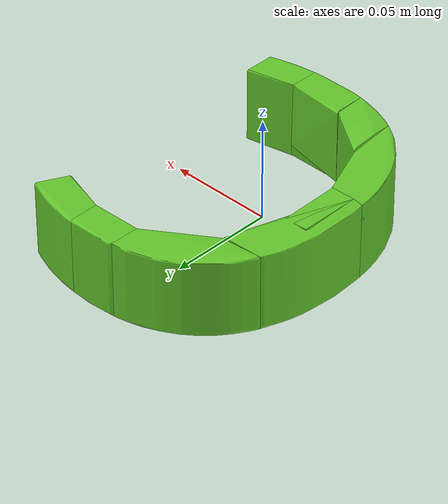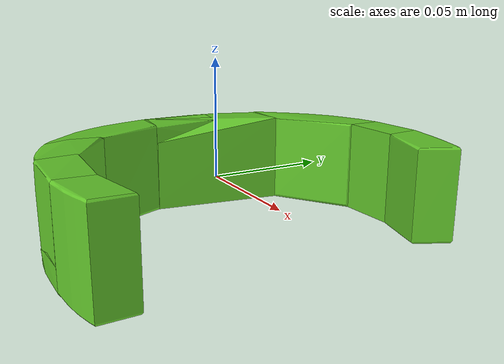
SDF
<?xml version='1.0' encoding='UTF-8'?>
<!-- This SDF was autogenerated by obj_to_drake_sdf.py -->
<sdf version="1.7">
  <model name="C_centered">
    <link name="C_centered">
      <inertial>
        <pose>0 0 0 0 0 0</pose>
        <mass>0.05</mass>
        <inertia>
          <ixx>0.00014868633</ixx>
          <iyy>5.6265767e-05</iyy>
          <izz>0.00019182793</izz>
          <ixy>-3.5721955e-06</ixy>
          <ixz>-3.6788468e-10</ixz>
          <iyz>-3.6171803e-10</iyz>
        </inertia>
      </inertial>
      <visual name="convex_0">
        <pose>0 0 0 0 0 0</pose>
        <geometry>
          <mesh>
            <uri>C_centered_convex_0.obj</uri>
          </mesh>
        </geometry>
        <material>
          <diffuse>0.39215686274509803 0.7843137254901961 0.17254901960784313 1</diffuse>
        </material>
      </visual>
      <collision name="convex_0_volume">
        <pose>0 0 0 0 0 0</pose>
        <geometry>
          <mesh>
            <uri>C_centered_convex_0.obj</uri>
          </mesh>
        </geometry>
        <drake:proximity_properties xmlns:drake="uri:drake">
          <drake:compliant_hydroelastic/>
          <drake:hydroelastic_modulus> 3.0e7 </drake:hydroelastic_modulus>
          <drake:mesh_resolution_hint> 0.02 </drake:mesh_resolution_hint>
          <drake:hunt_crossley_dissipation>10</drake:hunt_crossley_dissipation>
          <drake:mu_dynamic>0.3</drake:mu_dynamic>
        </drake:proximity_properties>
      </collision>
      <visual name="convex_1">
        <pose>0 0 0 0 0 0</pose>
        <geometry>
          <mesh>
            <uri>C_centered_convex_1.obj</uri>
          </mesh>
        </geometry>
        <material>
          <diffuse>0.39215686274509803 0.7843137254901961 0.17254901960784313 1</diffuse>
        </material>
      </visual>
      <collision name="convex_1_volume">
        <pose>0 0 0 0 0 0</pose>
        <geometry>
          <mesh>
            <uri>C_centered_convex_1.obj</uri>
          </mesh>
        </geometry>
        <drake:proximity_properties xmlns:drake="uri:drake">
          <drake:compliant_hydroelastic/>
          <drake:hydroelastic_modulus> 3.0e7 </drake:hydroelastic_modulus>
          <drake:mesh_resolution_hint> 0.02 </drake:mesh_resolution_hint>
          <drake:hunt_crossley_dissipation>10</drake:hunt_crossley_dissipation>
          <drake:mu_dynamic>0.3</drake:mu_dynamic>
        </drake:proximity_properties>
      </collision>
      <visual name="convex_2">
        <pose>0 0 0 0 0 0</pose>
        <geometry>
          <mesh>
            <uri>C_centered_convex_2.obj</uri>
          </mesh>
        </geometry>
        <material>
          <diffuse>0.39215686274509803 0.7843137254901961 0.17254901960784313 1</diffuse>
        </material>
      </visual>
      <collision name="convex_2_volume">
        <pose>0 0 0 0 0 0</pose>
        <geometry>
          <mesh>
            <uri>C_centered_convex_2.obj</uri>
          </mesh>
        </geometry>
        <drake:proximity_properties xmlns:drake="uri:drake">
          <drake:compliant_hydroelastic/>
          <drake:hydroelastic_modulus> 3.0e7 </drake:hydroelastic_modulus>
          <drake:mesh_resolution_hint> 0.02 </drake:mesh_resolution_hint>
          <drake:hunt_crossley_dissipation>10</drake:hunt_crossley_dissipation>
          <drake:mu_dynamic>0.3</drake:mu_dynamic>
        </drake:proximity_properties>
      </collision>
      <visual name="convex_3">
        <pose>0 0 0 0 0 0</pose>
        <geometry>
          <mesh>
            <uri>C_centered_convex_3.obj</uri>
          </mesh>
        </geometry>
        <material>
          <diffuse>0.39215686274509803 0.7843137254901961 0.17254901960784313 1</diffuse>
        </material>
      </visual>
      <collision name="convex_3_volume">
        <pose>0 0 0 0 0 0</pose>
        <geometry>
          <mesh>
            <uri>C_centered_convex_3.obj</uri>
          </mesh>
        </geometry>
        <drake:proximity_properties xmlns:drake="uri:drake">
          <drake:compliant_hydroelastic/>
          <drake:hydroelastic_modulus> 3.0e7 </drake:hydroelastic_modulus>
          <drake:mesh_resolution_hint> 0.02 </drake:mesh_resolution_hint>
          <drake:hunt_crossley_dissipation>10</drake:hunt_crossley_dissipation>
          <drake:mu_dynamic>0.3</drake:mu_dynamic>
        </drake:proximity_properties>
      </collision>
      <visual name="convex_4">
        <pose>0 0 0 0 0 0</pose>
        <geometry>
          <mesh>
            <uri>C_centered_convex_4.obj</uri>
          </mesh>
        </geometry>
        <material>
          <diffuse>0.39215686274509803 0.7843137254901961 0.17254901960784313 1</diffuse>
        </material>
      </visual>
      <collision name="convex_4_volume">
        <pose>0 0 0 0 0 0</pose>
        <geometry>
          <mesh>
            <uri>C_centered_convex_4.obj</uri>
          </mesh>
        </geometry>
        <drake:proximity_properties xmlns:drake="uri:drake">
          <drake:compliant_hydroelastic/>
          <drake:hydroelastic_modulus> 3.0e7 </drake:hydroelastic_modulus>
          <drake:mesh_resolution_hint> 0.02 </drake:mesh_resolution_hint>
          <drake:hunt_crossley_dissipation>10</drake:hunt_crossley_dissipation>
          <drake:mu_dynamic>0.3</drake:mu_dynamic>
        </drake:proximity_properties>
      </collision>
      <visual name="convex_5">
        <pose>0 0 0 0 0 0</pose>
        <geometry>
          <mesh>
            <uri>C_centered_convex_5.obj</uri>
          </mesh>
        </geometry>
        <material>
          <diffuse>0.39215686274509803 0.7843137254901961 0.17254901960784313 1</diffuse>
        </material>
      </visual>
      <collision name="convex_5_volume">
        <pose>0 0 0 0 0 0</pose>
        <geometry>
          <mesh>
            <uri>C_centered_convex_5.obj</uri>
          </mesh>
        </geometry>
        <drake:proximity_properties xmlns:drake="uri:drake">
          <drake:compliant_hydroelastic/>
          <drake:hydroelastic_modulus> 3.0e7 </drake:hydroelastic_modulus>
          <drake:mesh_resolution_hint> 0.02 </drake:mesh_resolution_hint>
          <drake:hunt_crossley_dissipation>10</drake:hunt_crossley_dissipation>
          <drake:mu_dynamic>0.3</drake:mu_dynamic>
        </drake:proximity_properties>
      </collision>
      <visual name="convex_6">
        <pose>0 0 0 0 0 0</pose>
        <geometry>
          <mesh>
            <uri>C_centered_convex_6.obj</uri>
          </mesh>
        </geometry>
        <material>
          <diffuse>0.39215686274509803 0.7843137254901961 0.17254901960784313 1</diffuse>
        </material>
      </visual>
      <collision name="convex_6_volume">
        <pose>0 0 0 0 0 0</pose>
        <geometry>
          <mesh>
            <uri>C_centered_convex_6.obj</uri>
          </mesh>
        </geometry>
        <drake:proximity_properties xmlns:drake="uri:drake">
          <drake:compliant_hydroelastic/>
          <drake:hydroelastic_modulus> 3.0e7 </drake:hydroelastic_modulus>
          <drake:mesh_resolution_hint> 0.02 </drake:mesh_resolution_hint>
          <drake:hunt_crossley_dissipation>10</drake:hunt_crossley_dissipation>
          <drake:mu_dynamic>0.3</drake:mu_dynamic>
        </drake:proximity_properties>
      </collision>
      <visual name="convex_7">
        <pose>0 0 0 0 0 0</pose>
        <geometry>
          <mesh>
            <uri>C_centered_convex_7.obj</uri>
          </mesh>
        </geometry>
        <material>
          <diffuse>0.39215686274509803 0.7843137254901961 0.17254901960784313 1</diffuse>
        </material>
      </visual>
      <collision name="convex_7_volume">
        <pose>0 0 0 0 0 0</pose>
        <geometry>
          <mesh>
            <uri>C_centered_convex_7.obj</uri>
          </mesh>
        </geometry>
        <drake:proximity_properties xmlns:drake="uri:drake">
          <drake:compliant_hydroelastic/>
          <drake:hydroelastic_modulus> 3.0e7 </drake:hydroelastic_modulus>
          <drake:mesh_resolution_hint> 0.02 </drake:mesh_resolution_hint>
          <drake:hunt_crossley_dissipation>10</drake:hunt_crossley_dissipation>
          <drake:mu_dynamic>0.3</drake:mu_dynamic>
        </drake:proximity_properties>
      </collision>
      <visual name="convex_8">
        <pose>0 0 0 0 0 0</pose>
        <geometry>
          <mesh>
            <uri>C_centered_convex_8.obj</uri>
          </mesh>
        </geometry>
        <material>
          <diffuse>0.39215686274509803 0.7843137254901961 0.17254901960784313 1</diffuse>
        </material>
      </visual>
      <collision name="convex_8_volume">
        <pose>0 0 0 0 0 0</pose>
        <geometry>
          <mesh>
            <uri>C_centered_convex_8.obj</uri>
          </mesh>
        </geometry>
        <drake:proximity_properties xmlns:drake="uri:drake">
          <drake:compliant_hydroelastic/>
          <drake:hydroelastic_modulus> 3.0e7 </drake:hydroelastic_modulus>
          <drake:mesh_resolution_hint> 0.02 </drake:mesh_resolution_hint>
          <drake:hunt_crossley_dissipation>10</drake:hunt_crossley_dissipation>
          <drake:mu_dynamic>0.3</drake:mu_dynamic>
        </drake:proximity_properties>
      </collision>
      <visual name="convex_9">
        <pose>0 0 0 0 0 0</pose>
        <geometry>
          <mesh>
            <uri>C_centered_convex_9.obj</uri>
          </mesh>
        </geometry>
        <material>
          <diffuse>0.39215686274509803 0.7843137254901961 0.17254901960784313 1</diffuse>
        </material>
      </visual>
      <collision name="convex_9_volume">
        <pose>0 0 0 0 0 0</pose>
        <geometry>
          <mesh>
            <uri>C_centered_convex_9.obj</uri>
          </mesh>
        </geometry>
        <drake:proximity_properties xmlns:drake="uri:drake">
          <drake:compliant_hydroelastic/>
          <drake:hydroelastic_modulus> 3.0e7 </drake:hydroelastic_modulus>
          <drake:mesh_resolution_hint> 0.02 </drake:mesh_resolution_hint>
          <drake:hunt_crossley_dissipation>10</drake:hunt_crossley_dissipation>
          <drake:mu_dynamic>0.3</drake:mu_dynamic>
        </drake:proximity_properties>
      </collision>
    </link>
  </model>
</sdf>
